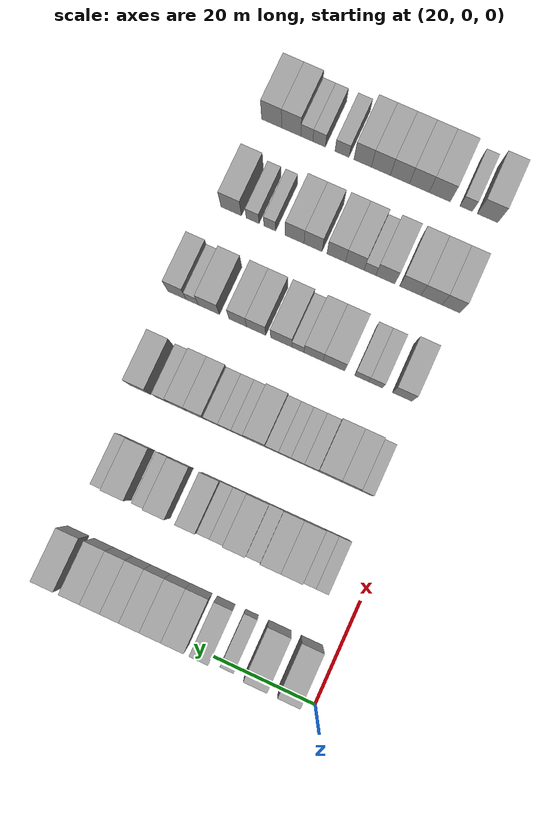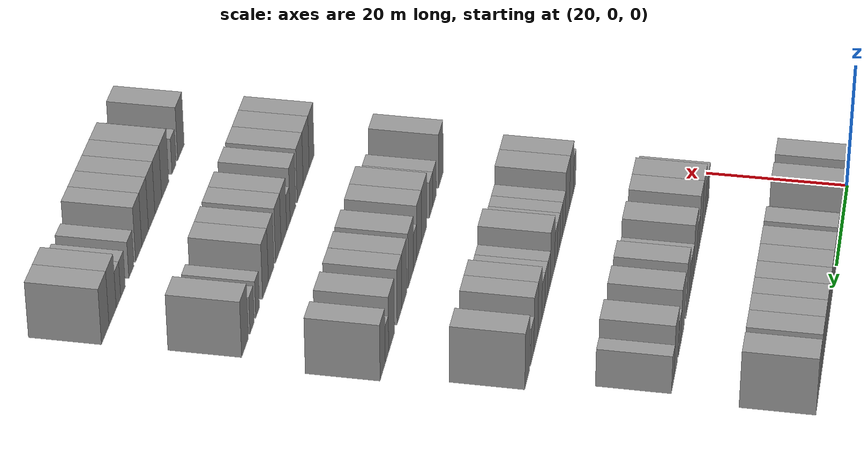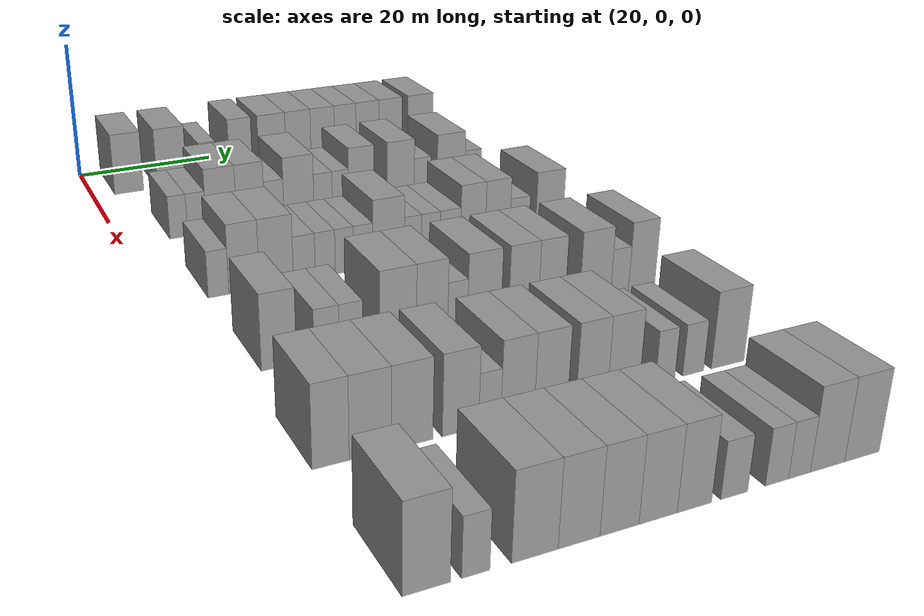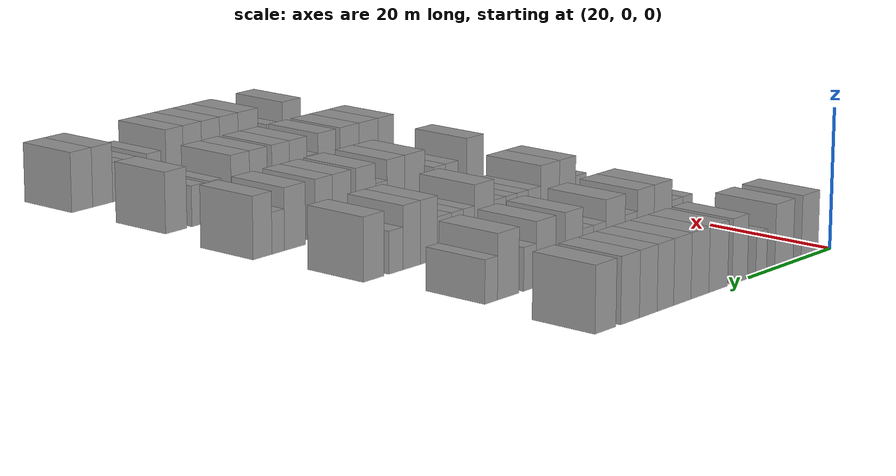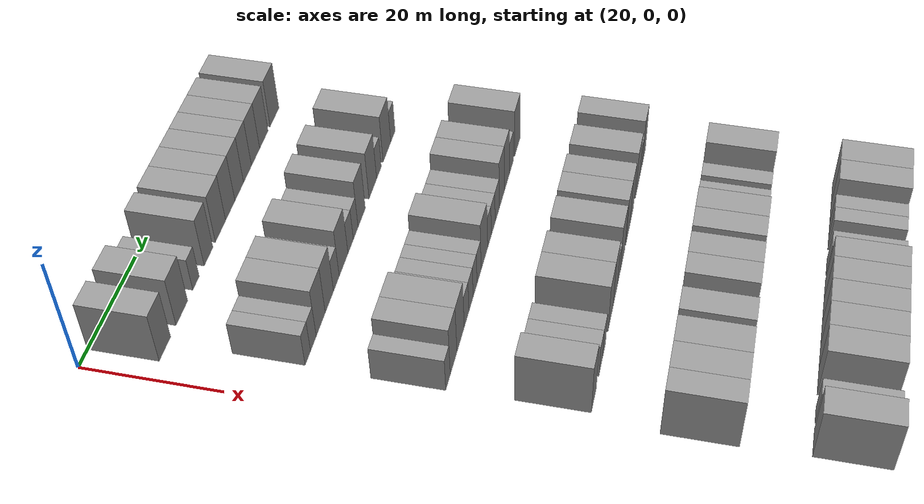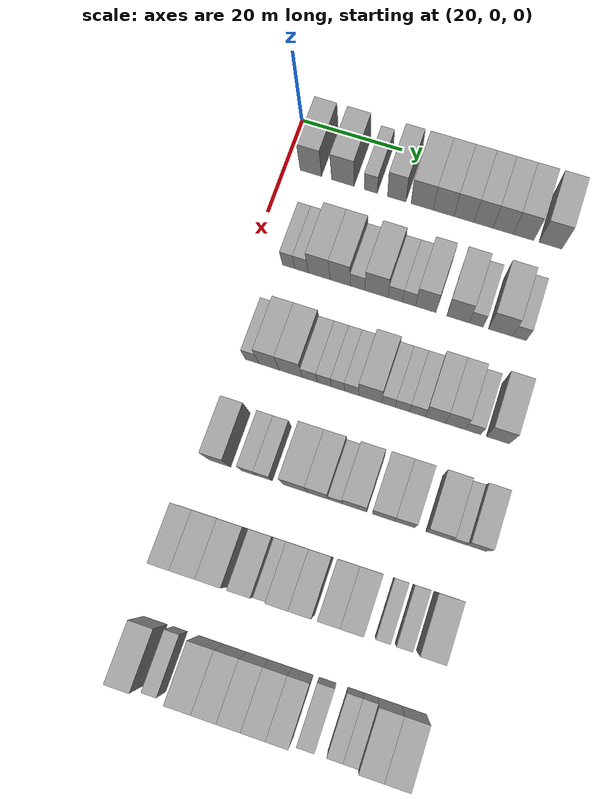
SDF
<sdf version="1.6">
 <world name="default">
  <model name="building_89">
   <static>1</static>
   <pose>25.0000 5.1682 0 0.000000 0.000000 0.000000</pose>
   <link name="link">
    <pose>0 0 4.50 0 0 0</pose>
    <collision name="collision"><geometry><box><size>10.0000 4.2393 9.0000</size></box></geometry></collision>
    <visual name="visual">
     <cast_shadows>0</cast_shadows>
     <geometry><box><size>10.0000 4.2393 9.0000</size></box></geometry>
     <material>
      <script>
       <uri>model://grey_wall/materials/scripts</uri>
       <uri>model://grey_wall/materials/textures</uri>
       <name>vrc/grey_wall</name>
      </script>
     </material>
    </visual>
   </link>
  </model>
  <model name="building_90">
   <static>1</static>
   <pose>25.0000 11.5206 0 0.000000 0.000000 0.000000</pose>
   <link name="link">
    <pose>0 0 4.50 0 0 0</pose>
    <collision name="collision"><geometry><box><size>10.0000 4.4654 9.0000</size></box></geometry></collision>
    <visual name="visual">
     <cast_shadows>0</cast_shadows>
     <geometry><box><size>10.0000 4.4654 9.0000</size></box></geometry>
     <material>
      <script>
       <uri>model://grey_wall/materials/scripts</uri>
       <uri>model://grey_wall/materials/textures</uri>
       <name>vrc/grey_wall</name>
      </script>
     </material>
    </visual>
   </link>
  </model>
  <model name="building_91">
   <static>1</static>
   <pose>25.0000 17.0446 0 0.000000 0.000000 0.000000</pose>
   <link name="link">
    <pose>0 0 3.00 0 0 0</pose>
    <collision name="collision"><geometry><box><size>10.0000 2.5824 6.0000</size></box></geometry></collision>
    <visual name="visual">
     <cast_shadows>0</cast_shadows>
     <geometry><box><size>10.0000 2.5824 6.0000</size></box></geometry>
     <material>
      <script>
       <uri>model://grey_wall/materials/scripts</uri>
       <uri>model://grey_wall/materials/textures</uri>
       <name>vrc/grey_wall</name>
      </script>
     </material>
    </visual>
   </link>
  </model>
  <model name="building_92">
   <static>1</static>
   <pose>25.0000 22.1387 0 0.000000 0.000000 0.000000</pose>
   <link name="link">
    <pose>0 0 4.50 0 0 0</pose>
    <collision name="collision"><geometry><box><size>10.0000 3.6059 9.0000</size></box></geometry></collision>
    <visual name="visual">
     <cast_shadows>0</cast_shadows>
     <geometry><box><size>10.0000 3.6059 9.0000</size></box></geometry>
     <material>
      <script>
       <uri>model://grey_wall/materials/scripts</uri>
       <uri>model://grey_wall/materials/textures</uri>
       <name>vrc/grey_wall</name>
      </script>
     </material>
    </visual>
   </link>
  </model>
  <model name="building_93">
   <static>1</static>
   <pose>25.0000 27.1247 0 0.000000 0.000000 0.000000</pose>
   <link name="link">
    <pose>0 0 4.50 0 0 0</pose>
    <collision name="collision"><geometry><box><size>10.0000 4.3662 9.0000</size></box></geometry></collision>
    <visual name="visual">
     <cast_shadows>0</cast_shadows>
     <geometry><box><size>10.0000 4.3662 9.0000</size></box></geometry>
     <material>
      <script>
       <uri>model://grey_wall/materials/scripts</uri>
       <uri>model://grey_wall/materials/textures</uri>
       <name>vrc/grey_wall</name>
      </script>
     </material>
    </visual>
   </link>
  </model>
  <model name="building_94">
   <static>1</static>
   <pose>25.0000 31.3392 0 0.000000 0.000000 0.000000</pose>
   <link name="link">
    <pose>0 0 4.50 0 0 0</pose>
    <collision name="collision"><geometry><box><size>10.0000 4.0628 9.0000</size></box></geometry></collision>
    <visual name="visual">
     <cast_shadows>0</cast_shadows>
     <geometry><box><size>10.0000 4.0628 9.0000</size></box></geometry>
     <material>
      <script>
       <uri>model://grey_wall/materials/scripts</uri>
       <uri>model://grey_wall/materials/textures</uri>
       <name>vrc/grey_wall</name>
      </script>
     </material>
    </visual>
   </link>
  </model>
  <model name="building_95">
   <static>1</static>
   <pose>25.0000 35.3141 0 0.000000 0.000000 0.000000</pose>
   <link name="link">
    <pose>0 0 4.50 0 0 0</pose>
    <collision name="collision"><geometry><box><size>10.0000 3.8870 9.0000</size></box></geometry></collision>
    <visual name="visual">
     <cast_shadows>0</cast_shadows>
     <geometry><box><size>10.0000 3.8870 9.0000</size></box></geometry>
     <material>
      <script>
       <uri>model://grey_wall/materials/scripts</uri>
       <uri>model://grey_wall/materials/textures</uri>
       <name>vrc/grey_wall</name>
      </script>
     </material>
    </visual>
   </link>
  </model>
  <model name="building_96">
   <static>1</static>
   <pose>25.0000 39.0773 0 0.000000 0.000000 0.000000</pose>
   <link name="link">
    <pose>0 0 4.50 0 0 0</pose>
    <collision name="collision"><geometry><box><size>10.0000 3.6394 9.0000</size></box></geometry></collision>
    <visual name="visual">
     <cast_shadows>0</cast_shadows>
     <geometry><box><size>10.0000 3.6394 9.0000</size></box></geometry>
     <material>
      <script>
       <uri>model://grey_wall/materials/scripts</uri>
       <uri>model://grey_wall/materials/textures</uri>
       <name>vrc/grey_wall</name>
      </script>
     </material>
    </visual>
   </link>
  </model>
  <model name="building_97">
   <static>1</static>
   <pose>25.0000 42.8184 0 0.000000 0.000000 0.000000</pose>
   <link name="link">
    <pose>0 0 4.50 0 0 0</pose>
    <collision name="collision"><geometry><box><size>10.0000 3.8427 9.0000</size></box></geometry></collision>
    <visual name="visual">
     <cast_shadows>0</cast_shadows>
     <geometry><box><size>10.0000 3.8427 9.0000</size></box></geometry>
     <material>
      <script>
       <uri>model://grey_wall/materials/scripts</uri>
       <uri>model://grey_wall/materials/textures</uri>
       <name>vrc/grey_wall</name>
      </script>
     </material>
    </visual>
   </link>
  </model>
  <model name="building_98">
   <static>1</static>
   <pose>25.0000 46.7473 0 0.000000 0.000000 0.000000</pose>
   <link name="link">
    <pose>0 0 4.50 0 0 0</pose>
    <collision name="collision"><geometry><box><size>10.0000 4.0151 9.0000</size></box></geometry></collision>
    <visual name="visual">
     <cast_shadows>0</cast_shadows>
     <geometry><box><size>10.0000 4.0151 9.0000</size></box></geometry>
     <material>
      <script>
       <uri>model://grey_wall/materials/scripts</uri>
       <uri>model://grey_wall/materials/textures</uri>
       <name>vrc/grey_wall</name>
      </script>
     </material>
    </visual>
   </link>
  </model>
  <model name="building_99">
   <static>1</static>
   <pose>25.0000 51.9541 0 0.000000 0.000000 0.000000</pose>
   <link name="link">
    <pose>0 0 4.50 0 0 0</pose>
    <collision name="collision"><geometry><box><size>10.0000 4.3986 9.0000</size></box></geometry></collision>
    <visual name="visual">
     <cast_shadows>0</cast_shadows>
     <geometry><box><size>10.0000 4.3986 9.0000</size></box></geometry>
     <material>
      <script>
       <uri>model://grey_wall/materials/scripts</uri>
       <uri>model://grey_wall/materials/textures</uri>
       <name>vrc/grey_wall</name>
      </script>
     </material>
    </visual>
   </link>
  </model>
  <model name="building_249">
   <static>1</static>
   <pose>44.0000 7.4224 0 0.000000 0.000000 0.000000</pose>
   <link name="link">
    <pose>0 0 3.00 0 0 0</pose>
    <collision name="collision"><geometry><box><size>10.0000 2.4148 6.0000</size></box></geometry></collision>
    <visual name="visual">
     <cast_shadows>0</cast_shadows>
     <geometry><box><size>10.0000 2.4148 6.0000</size></box></geometry>
     <material>
      <script>
       <uri>model://grey_wall/materials/scripts</uri>
       <uri>model://grey_wall/materials/textures</uri>
       <name>vrc/grey_wall</name>
      </script>
     </material>
    </visual>
   </link>
  </model>
  <model name="building_250">
   <static>1</static>
   <pose>44.0000 9.9266 0 0.000000 0.000000 0.000000</pose>
   <link name="link">
    <pose>0 0 3.00 0 0 0</pose>
    <collision name="collision"><geometry><box><size>10.0000 2.5937 6.0000</size></box></geometry></collision>
    <visual name="visual">
     <cast_shadows>0</cast_shadows>
     <geometry><box><size>10.0000 2.5937 6.0000</size></box></geometry>
     <material>
      <script>
       <uri>model://grey_wall/materials/scripts</uri>
       <uri>model://grey_wall/materials/textures</uri>
       <name>vrc/grey_wall</name>
      </script>
     </material>
    </visual>
   </link>
  </model>
  <model name="building_251">
   <static>1</static>
   <pose>44.0000 13.3221 0 0.000000 0.000000 0.000000</pose>
   <link name="link">
    <pose>0 0 4.50 0 0 0</pose>
    <collision name="collision"><geometry><box><size>10.0000 4.1971 9.0000</size></box></geometry></collision>
    <visual name="visual">
     <cast_shadows>0</cast_shadows>
     <geometry><box><size>10.0000 4.1971 9.0000</size></box></geometry>
     <material>
      <script>
       <uri>model://grey_wall/materials/scripts</uri>
       <uri>model://grey_wall/materials/textures</uri>
       <name>vrc/grey_wall</name>
      </script>
     </material>
    </visual>
   </link>
  </model>
  <model name="building_252">
   <static>1</static>
   <pose>44.0000 17.3969 0 0.000000 0.000000 0.000000</pose>
   <link name="link">
    <pose>0 0 4.50 0 0 0</pose>
    <collision name="collision"><geometry><box><size>10.0000 3.9526 9.0000</size></box></geometry></collision>
    <visual name="visual">
     <cast_shadows>0</cast_shadows>
     <geometry><box><size>10.0000 3.9526 9.0000</size></box></geometry>
     <material>
      <script>
       <uri>model://grey_wall/materials/scripts</uri>
       <uri>model://grey_wall/materials/textures</uri>
       <name>vrc/grey_wall</name>
      </script>
     </material>
    </visual>
   </link>
  </model>
  <model name="building_253">
   <static>1</static>
   <pose>44.0000 20.7766 0 0.000000 0.000000 0.000000</pose>
   <link name="link">
    <pose>0 0 3.00 0 0 0</pose>
    <collision name="collision"><geometry><box><size>10.0000 2.8067 6.0000</size></box></geometry></collision>
    <visual name="visual">
     <cast_shadows>0</cast_shadows>
     <geometry><box><size>10.0000 2.8067 6.0000</size></box></geometry>
     <material>
      <script>
       <uri>model://grey_wall/materials/scripts</uri>
       <uri>model://grey_wall/materials/textures</uri>
       <name>vrc/grey_wall</name>
      </script>
     </material>
    </visual>
   </link>
  </model>
  <model name="building_254">
   <static>1</static>
   <pose>44.0000 24.3765 0 0.000000 0.000000 0.000000</pose>
   <link name="link">
    <pose>0 0 4.50 0 0 0</pose>
    <collision name="collision"><geometry><box><size>10.0000 4.3931 9.0000</size></box></geometry></collision>
    <visual name="visual">
     <cast_shadows>0</cast_shadows>
     <geometry><box><size>10.0000 4.3931 9.0000</size></box></geometry>
     <material>
      <script>
       <uri>model://grey_wall/materials/scripts</uri>
       <uri>model://grey_wall/materials/textures</uri>
       <name>vrc/grey_wall</name>
      </script>
     </material>
    </visual>
   </link>
  </model>
  <model name="building_255">
   <static>1</static>
   <pose>44.0000 27.9406 0 0.000000 0.000000 0.000000</pose>
   <link name="link">
    <pose>0 0 3.00 0 0 0</pose>
    <collision name="collision"><geometry><box><size>10.0000 2.7352 6.0000</size></box></geometry></collision>
    <visual name="visual">
     <cast_shadows>0</cast_shadows>
     <geometry><box><size>10.0000 2.7352 6.0000</size></box></geometry>
     <material>
      <script>
       <uri>model://grey_wall/materials/scripts</uri>
       <uri>model://grey_wall/materials/textures</uri>
       <name>vrc/grey_wall</name>
      </script>
     </material>
    </visual>
   </link>
  </model>
  <model name="building_256">
   <static>1</static>
   <pose>44.0000 30.5505 0 0.000000 0.000000 0.000000</pose>
   <link name="link">
    <pose>0 0 3.00 0 0 0</pose>
    <collision name="collision"><geometry><box><size>10.0000 2.4846 6.0000</size></box></geometry></collision>
    <visual name="visual">
     <cast_shadows>0</cast_shadows>
     <geometry><box><size>10.0000 2.4846 6.0000</size></box></geometry>
     <material>
      <script>
       <uri>model://grey_wall/materials/scripts</uri>
       <uri>model://grey_wall/materials/textures</uri>
       <name>vrc/grey_wall</name>
      </script>
     </material>
    </visual>
   </link>
  </model>
  <model name="building_257">
   <static>1</static>
   <pose>44.0000 33.7328 0 0.000000 0.000000 0.000000</pose>
   <link name="link">
    <pose>0 0 4.50 0 0 0</pose>
    <collision name="collision"><geometry><box><size>10.0000 3.8801 9.0000</size></box></geometry></collision>
    <visual name="visual">
     <cast_shadows>0</cast_shadows>
     <geometry><box><size>10.0000 3.8801 9.0000</size></box></geometry>
     <material>
      <script>
       <uri>model://grey_wall/materials/scripts</uri>
       <uri>model://grey_wall/materials/textures</uri>
       <name>vrc/grey_wall</name>
      </script>
     </material>
    </visual>
   </link>
  </model>
  <model name="building_258">
   <static>1</static>
   <pose>44.0000 39.7810 0 0.000000 0.000000 0.000000</pose>
   <link name="link">
    <pose>0 0 4.50 0 0 0</pose>
    <collision name="collision"><geometry><box><size>10.0000 4.2163 9.0000</size></box></geometry></collision>
    <visual name="visual">
     <cast_shadows>0</cast_shadows>
     <geometry><box><size>10.0000 4.2163 9.0000</size></box></geometry>
     <material>
      <script>
       <uri>model://grey_wall/materials/scripts</uri>
       <uri>model://grey_wall/materials/textures</uri>
       <name>vrc/grey_wall</name>
      </script>
     </material>
    </visual>
   </link>
  </model>
  <model name="building_259">
   <static>1</static>
   <pose>44.0000 43.2154 0 0.000000 0.000000 0.000000</pose>
   <link name="link">
    <pose>0 0 3.00 0 0 0</pose>
    <collision name="collision"><geometry><box><size>10.0000 2.6526 6.0000</size></box></geometry></collision>
    <visual name="visual">
     <cast_shadows>0</cast_shadows>
     <geometry><box><size>10.0000 2.6526 6.0000</size></box></geometry>
     <material>
      <script>
       <uri>model://grey_wall/materials/scripts</uri>
       <uri>model://grey_wall/materials/textures</uri>
       <name>vrc/grey_wall</name>
      </script>
     </material>
    </visual>
   </link>
  </model>
  <model name="building_260">
   <static>1</static>
   <pose>44.0000 47.7839 0 0.000000 0.000000 0.000000</pose>
   <link name="link">
    <pose>0 0 4.50 0 0 0</pose>
    <collision name="collision"><geometry><box><size>10.0000 4.4843 9.0000</size></box></geometry></collision>
    <visual name="visual">
     <cast_shadows>0</cast_shadows>
     <geometry><box><size>10.0000 4.4843 9.0000</size></box></geometry>
     <material>
      <script>
       <uri>model://grey_wall/materials/scripts</uri>
       <uri>model://grey_wall/materials/textures</uri>
       <name>vrc/grey_wall</name>
      </script>
     </material>
    </visual>
   </link>
  </model>
  <model name="building_261">
   <static>1</static>
   <pose>44.0000 51.3295 0 0.000000 0.000000 0.000000</pose>
   <link name="link">
    <pose>0 0 3.00 0 0 0</pose>
    <collision name="collision"><geometry><box><size>10.0000 2.6069 6.0000</size></box></geometry></collision>
    <visual name="visual">
     <cast_shadows>0</cast_shadows>
     <geometry><box><size>10.0000 2.6069 6.0000</size></box></geometry>
     <material>
      <script>
       <uri>model://grey_wall/materials/scripts</uri>
       <uri>model://grey_wall/materials/textures</uri>
       <name>vrc/grey_wall</name>
      </script>
     </material>
    </visual>
   </link>
  </model>
  <model name="building_432">
   <static>1</static>
   <pose>63.0000 7.1593 0 0.000000 0.000000 0.000000</pose>
   <link name="link">
    <pose>0 0 3.00 0 0 0</pose>
    <collision name="collision"><geometry><box><size>10.0000 2.5609 6.0000</size></box></geometry></collision>
    <visual name="visual">
     <cast_shadows>0</cast_shadows>
     <geometry><box><size>10.0000 2.5609 6.0000</size></box></geometry>
     <material>
      <script>
       <uri>model://grey_wall/materials/scripts</uri>
       <uri>model://grey_wall/materials/textures</uri>
       <name>vrc/grey_wall</name>
      </script>
     </material>
    </visual>
   </link>
  </model>
  <model name="building_433">
   <static>1</static>
   <pose>63.0000 10.3559 0 0.000000 0.000000 0.000000</pose>
   <link name="link">
    <pose>0 0 4.50 0 0 0</pose>
    <collision name="collision"><geometry><box><size>10.0000 3.8323 9.0000</size></box></geometry></collision>
    <visual name="visual">
     <cast_shadows>0</cast_shadows>
     <geometry><box><size>10.0000 3.8323 9.0000</size></box></geometry>
     <material>
      <script>
       <uri>model://grey_wall/materials/scripts</uri>
       <uri>model://grey_wall/materials/textures</uri>
       <name>vrc/grey_wall</name>
      </script>
     </material>
    </visual>
   </link>
  </model>
  <model name="building_434">
   <static>1</static>
   <pose>63.0000 14.4499 0 0.000000 0.000000 0.000000</pose>
   <link name="link">
    <pose>0 0 4.50 0 0 0</pose>
    <collision name="collision"><geometry><box><size>10.0000 4.3558 9.0000</size></box></geometry></collision>
    <visual name="visual">
     <cast_shadows>0</cast_shadows>
     <geometry><box><size>10.0000 4.3558 9.0000</size></box></geometry>
     <material>
      <script>
       <uri>model://grey_wall/materials/scripts</uri>
       <uri>model://grey_wall/materials/textures</uri>
       <name>vrc/grey_wall</name>
      </script>
     </material>
    </visual>
   </link>
  </model>
  <model name="building_435">
   <static>1</static>
   <pose>63.0000 18.0477 0 0.000000 0.000000 0.000000</pose>
   <link name="link">
    <pose>0 0 3.00 0 0 0</pose>
    <collision name="collision"><geometry><box><size>10.0000 2.8398 6.0000</size></box></geometry></collision>
    <visual name="visual">
     <cast_shadows>0</cast_shadows>
     <geometry><box><size>10.0000 2.8398 6.0000</size></box></geometry>
     <material>
      <script>
       <uri>model://grey_wall/materials/scripts</uri>
       <uri>model://grey_wall/materials/textures</uri>
       <name>vrc/grey_wall</name>
      </script>
     </material>
    </visual>
   </link>
  </model>
  <model name="building_436">
   <static>1</static>
   <pose>63.0000 20.7925 0 0.000000 0.000000 0.000000</pose>
   <link name="link">
    <pose>0 0 3.00 0 0 0</pose>
    <collision name="collision"><geometry><box><size>10.0000 2.6497 6.0000</size></box></geometry></collision>
    <visual name="visual">
     <cast_shadows>0</cast_shadows>
     <geometry><box><size>10.0000 2.6497 6.0000</size></box></geometry>
     <material>
      <script>
       <uri>model://grey_wall/materials/scripts</uri>
       <uri>model://grey_wall/materials/textures</uri>
       <name>vrc/grey_wall</name>
      </script>
     </material>
    </visual>
   </link>
  </model>
  <model name="building_437">
   <static>1</static>
   <pose>63.0000 23.3493 0 0.000000 0.000000 0.000000</pose>
   <link name="link">
    <pose>0 0 3.00 0 0 0</pose>
    <collision name="collision"><geometry><box><size>10.0000 2.4640 6.0000</size></box></geometry></collision>
    <visual name="visual">
     <cast_shadows>0</cast_shadows>
     <geometry><box><size>10.0000 2.4640 6.0000</size></box></geometry>
     <material>
      <script>
       <uri>model://grey_wall/materials/scripts</uri>
       <uri>model://grey_wall/materials/textures</uri>
       <name>vrc/grey_wall</name>
      </script>
     </material>
    </visual>
   </link>
  </model>
  <model name="building_438">
   <static>1</static>
   <pose>63.0000 25.8976 0 0.000000 0.000000 0.000000</pose>
   <link name="link">
    <pose>0 0 3.00 0 0 0</pose>
    <collision name="collision"><geometry><box><size>10.0000 2.6326 6.0000</size></box></geometry></collision>
    <visual name="visual">
     <cast_shadows>0</cast_shadows>
     <geometry><box><size>10.0000 2.6326 6.0000</size></box></geometry>
     <material>
      <script>
       <uri>model://grey_wall/materials/scripts</uri>
       <uri>model://grey_wall/materials/textures</uri>
       <name>vrc/grey_wall</name>
      </script>
     </material>
    </visual>
   </link>
  </model>
  <model name="building_439">
   <static>1</static>
   <pose>63.0000 29.3674 0 0.000000 0.000000 0.000000</pose>
   <link name="link">
    <pose>0 0 4.50 0 0 0</pose>
    <collision name="collision"><geometry><box><size>10.0000 4.3069 9.0000</size></box></geometry></collision>
    <visual name="visual">
     <cast_shadows>0</cast_shadows>
     <geometry><box><size>10.0000 4.3069 9.0000</size></box></geometry>
     <material>
      <script>
       <uri>model://grey_wall/materials/scripts</uri>
       <uri>model://grey_wall/materials/textures</uri>
       <name>vrc/grey_wall</name>
      </script>
     </material>
    </visual>
   </link>
  </model>
  <model name="building_440">
   <static>1</static>
   <pose>63.0000 32.7330 0 0.000000 0.000000 0.000000</pose>
   <link name="link">
    <pose>0 0 3.00 0 0 0</pose>
    <collision name="collision"><geometry><box><size>10.0000 2.4243 6.0000</size></box></geometry></collision>
    <visual name="visual">
     <cast_shadows>0</cast_shadows>
     <geometry><box><size>10.0000 2.4243 6.0000</size></box></geometry>
     <material>
      <script>
       <uri>model://grey_wall/materials/scripts</uri>
       <uri>model://grey_wall/materials/textures</uri>
       <name>vrc/grey_wall</name>
      </script>
     </material>
    </visual>
   </link>
  </model>
  <model name="building_441">
   <static>1</static>
   <pose>63.0000 35.2612 0 0.000000 0.000000 0.000000</pose>
   <link name="link">
    <pose>0 0 3.00 0 0 0</pose>
    <collision name="collision"><geometry><box><size>10.0000 2.6322 6.0000</size></box></geometry></collision>
    <visual name="visual">
     <cast_shadows>0</cast_shadows>
     <geometry><box><size>10.0000 2.6322 6.0000</size></box></geometry>
     <material>
      <script>
       <uri>model://grey_wall/materials/scripts</uri>
       <uri>model://grey_wall/materials/textures</uri>
       <name>vrc/grey_wall</name>
      </script>
     </material>
    </visual>
   </link>
  </model>
  <model name="building_442">
   <static>1</static>
   <pose>63.0000 38.0422 0 0.000000 0.000000 0.000000</pose>
   <link name="link">
    <pose>0 0 3.00 0 0 0</pose>
    <collision name="collision"><geometry><box><size>10.0000 2.9298 6.0000</size></box></geometry></collision>
    <visual name="visual">
     <cast_shadows>0</cast_shadows>
     <geometry><box><size>10.0000 2.9298 6.0000</size></box></geometry>
     <material>
      <script>
       <uri>model://grey_wall/materials/scripts</uri>
       <uri>model://grey_wall/materials/textures</uri>
       <name>vrc/grey_wall</name>
      </script>
     </material>
    </visual>
   </link>
  </model>
  <model name="building_443">
   <static>1</static>
   <pose>63.0000 41.3149 0 0.000000 0.000000 0.000000</pose>
   <link name="link">
    <pose>0 0 4.50 0 0 0</pose>
    <collision name="collision"><geometry><box><size>10.0000 3.6156 9.0000</size></box></geometry></collision>
    <visual name="visual">
     <cast_shadows>0</cast_shadows>
     <geometry><box><size>10.0000 3.6156 9.0000</size></box></geometry>
     <material>
      <script>
       <uri>model://grey_wall/materials/scripts</uri>
       <uri>model://grey_wall/materials/textures</uri>
       <name>vrc/grey_wall</name>
      </script>
     </material>
    </visual>
   </link>
  </model>
  <model name="building_444">
   <static>1</static>
   <pose>63.0000 44.9523 0 0.000000 0.000000 0.000000</pose>
   <link name="link">
    <pose>0 0 4.50 0 0 0</pose>
    <collision name="collision"><geometry><box><size>10.0000 3.6591 9.0000</size></box></geometry></collision>
    <visual name="visual">
     <cast_shadows>0</cast_shadows>
     <geometry><box><size>10.0000 3.6591 9.0000</size></box></geometry>
     <material>
      <script>
       <uri>model://grey_wall/materials/scripts</uri>
       <uri>model://grey_wall/materials/textures</uri>
       <name>vrc/grey_wall</name>
      </script>
     </material>
    </visual>
   </link>
  </model>
  <model name="building_445">
   <static>1</static>
   <pose>63.0000 48.2326 0 0.000000 0.000000 0.000000</pose>
   <link name="link">
    <pose>0 0 3.00 0 0 0</pose>
    <collision name="collision"><geometry><box><size>10.0000 2.9016 6.0000</size></box></geometry></collision>
    <visual name="visual">
     <cast_shadows>0</cast_shadows>
     <geometry><box><size>10.0000 2.9016 6.0000</size></box></geometry>
     <material>
      <script>
       <uri>model://grey_wall/materials/scripts</uri>
       <uri>model://grey_wall/materials/textures</uri>
       <name>vrc/grey_wall</name>
      </script>
     </material>
    </visual>
   </link>
  </model>
  <model name="building_446">
   <static>1</static>
   <pose>63.0000 52.7912 0 0.000000 0.000000 0.000000</pose>
   <link name="link">
    <pose>0 0 4.50 0 0 0</pose>
    <collision name="collision"><geometry><box><size>10.0000 4.2156 9.0000</size></box></geometry></collision>
    <visual name="visual">
     <cast_shadows>0</cast_shadows>
     <geometry><box><size>10.0000 4.2156 9.0000</size></box></geometry>
     <material>
      <script>
       <uri>model://grey_wall/materials/scripts</uri>
       <uri>model://grey_wall/materials/textures</uri>
       <name>vrc/grey_wall</name>
      </script>
     </material>
    </visual>
   </link>
  </model>
  <model name="building_612">
   <static>1</static>
   <pose>82.0000 8.0890 0 0.000000 0.000000 0.000000</pose>
   <link name="link">
    <pose>0 0 4.50 0 0 0</pose>
    <collision name="collision"><geometry><box><size>10.0000 3.9566 9.0000</size></box></geometry></collision>
    <visual name="visual">
     <cast_shadows>0</cast_shadows>
     <geometry><box><size>10.0000 3.9566 9.0000</size></box></geometry>
     <material>
      <script>
       <uri>model://grey_wall/materials/scripts</uri>
       <uri>model://grey_wall/materials/textures</uri>
       <name>vrc/grey_wall</name>
      </script>
     </material>
    </visual>
   </link>
  </model>
  <model name="building_613">
   <static>1</static>
   <pose>82.0000 13.5123 0 0.000000 0.000000 0.000000</pose>
   <link name="link">
    <pose>0 0 3.00 0 0 0</pose>
    <collision name="collision"><geometry><box><size>10.0000 2.8900 6.0000</size></box></geometry></collision>
    <visual name="visual">
     <cast_shadows>0</cast_shadows>
     <geometry><box><size>10.0000 2.8900 6.0000</size></box></geometry>
     <material>
      <script>
       <uri>model://grey_wall/materials/scripts</uri>
       <uri>model://grey_wall/materials/textures</uri>
       <name>vrc/grey_wall</name>
      </script>
     </material>
    </visual>
   </link>
  </model>
  <model name="building_614">
   <static>1</static>
   <pose>82.0000 16.3535 0 0.000000 0.000000 0.000000</pose>
   <link name="link">
    <pose>0 0 3.00 0 0 0</pose>
    <collision name="collision"><geometry><box><size>10.0000 2.7924 6.0000</size></box></geometry></collision>
    <visual name="visual">
     <cast_shadows>0</cast_shadows>
     <geometry><box><size>10.0000 2.7924 6.0000</size></box></geometry>
     <material>
      <script>
       <uri>model://grey_wall/materials/scripts</uri>
       <uri>model://grey_wall/materials/textures</uri>
       <name>vrc/grey_wall</name>
      </script>
     </material>
    </visual>
   </link>
  </model>
  <model name="building_615">
   <static>1</static>
   <pose>82.0000 21.9774 0 0.000000 0.000000 0.000000</pose>
   <link name="link">
    <pose>0 0 4.50 0 0 0</pose>
    <collision name="collision"><geometry><box><size>10.0000 4.4553 9.0000</size></box></geometry></collision>
    <visual name="visual">
     <cast_shadows>0</cast_shadows>
     <geometry><box><size>10.0000 4.4553 9.0000</size></box></geometry>
     <material>
      <script>
       <uri>model://grey_wall/materials/scripts</uri>
       <uri>model://grey_wall/materials/textures</uri>
       <name>vrc/grey_wall</name>
      </script>
     </material>
    </visual>
   </link>
  </model>
  <model name="building_616">
   <static>1</static>
   <pose>82.0000 26.1522 0 0.000000 0.000000 0.000000</pose>
   <link name="link">
    <pose>0 0 4.50 0 0 0</pose>
    <collision name="collision"><geometry><box><size>10.0000 3.8942 9.0000</size></box></geometry></collision>
    <visual name="visual">
     <cast_shadows>0</cast_shadows>
     <geometry><box><size>10.0000 3.8942 9.0000</size></box></geometry>
     <material>
      <script>
       <uri>model://grey_wall/materials/scripts</uri>
       <uri>model://grey_wall/materials/textures</uri>
       <name>vrc/grey_wall</name>
      </script>
     </material>
    </visual>
   </link>
  </model>
  <model name="building_617">
   <static>1</static>
   <pose>82.0000 29.3459 0 0.000000 0.000000 0.000000</pose>
   <link name="link">
    <pose>0 0 3.00 0 0 0</pose>
    <collision name="collision"><geometry><box><size>10.0000 2.4934 6.0000</size></box></geometry></collision>
    <visual name="visual">
     <cast_shadows>0</cast_shadows>
     <geometry><box><size>10.0000 2.4934 6.0000</size></box></geometry>
     <material>
      <script>
       <uri>model://grey_wall/materials/scripts</uri>
       <uri>model://grey_wall/materials/textures</uri>
       <name>vrc/grey_wall</name>
      </script>
     </material>
    </visual>
   </link>
  </model>
  <model name="building_618">
   <static>1</static>
   <pose>82.0000 32.7515 0 0.000000 0.000000 0.000000</pose>
   <link name="link">
    <pose>0 0 4.50 0 0 0</pose>
    <collision name="collision"><geometry><box><size>10.0000 4.3178 9.0000</size></box></geometry></collision>
    <visual name="visual">
     <cast_shadows>0</cast_shadows>
     <geometry><box><size>10.0000 4.3178 9.0000</size></box></geometry>
     <material>
      <script>
       <uri>model://grey_wall/materials/scripts</uri>
       <uri>model://grey_wall/materials/textures</uri>
       <name>vrc/grey_wall</name>
      </script>
     </material>
    </visual>
   </link>
  </model>
  <model name="building_619">
   <static>1</static>
   <pose>82.0000 37.8709 0 0.000000 0.000000 0.000000</pose>
   <link name="link">
    <pose>0 0 4.50 0 0 0</pose>
    <collision name="collision"><geometry><box><size>10.0000 3.9211 9.0000</size></box></geometry></collision>
    <visual name="visual">
     <cast_shadows>0</cast_shadows>
     <geometry><box><size>10.0000 3.9211 9.0000</size></box></geometry>
     <material>
      <script>
       <uri>model://grey_wall/materials/scripts</uri>
       <uri>model://grey_wall/materials/textures</uri>
       <name>vrc/grey_wall</name>
      </script>
     </material>
    </visual>
   </link>
  </model>
  <model name="building_620">
   <static>1</static>
   <pose>82.0000 41.6474 0 0.000000 0.000000 0.000000</pose>
   <link name="link">
    <pose>0 0 4.50 0 0 0</pose>
    <collision name="collision"><geometry><box><size>10.0000 3.6318 9.0000</size></box></geometry></collision>
    <visual name="visual">
     <cast_shadows>0</cast_shadows>
     <geometry><box><size>10.0000 3.6318 9.0000</size></box></geometry>
     <material>
      <script>
       <uri>model://grey_wall/materials/scripts</uri>
       <uri>model://grey_wall/materials/textures</uri>
       <name>vrc/grey_wall</name>
      </script>
     </material>
    </visual>
   </link>
  </model>
  <model name="building_621">
   <static>1</static>
   <pose>82.0000 47.6344 0 0.000000 0.000000 0.000000</pose>
   <link name="link">
    <pose>0 0 4.50 0 0 0</pose>
    <collision name="collision"><geometry><box><size>10.0000 4.3422 9.0000</size></box></geometry></collision>
    <visual name="visual">
     <cast_shadows>0</cast_shadows>
     <geometry><box><size>10.0000 4.3422 9.0000</size></box></geometry>
     <material>
      <script>
       <uri>model://grey_wall/materials/scripts</uri>
       <uri>model://grey_wall/materials/textures</uri>
       <name>vrc/grey_wall</name>
      </script>
     </material>
    </visual>
   </link>
  </model>
  <model name="building_622">
   <static>1</static>
   <pose>82.0000 51.0781 0 0.000000 0.000000 0.000000</pose>
   <link name="link">
    <pose>0 0 3.00 0 0 0</pose>
    <collision name="collision"><geometry><box><size>10.0000 2.5452 6.0000</size></box></geometry></collision>
    <visual name="visual">
     <cast_shadows>0</cast_shadows>
     <geometry><box><size>10.0000 2.5452 6.0000</size></box></geometry>
     <material>
      <script>
       <uri>model://grey_wall/materials/scripts</uri>
       <uri>model://grey_wall/materials/textures</uri>
       <name>vrc/grey_wall</name>
      </script>
     </material>
    </visual>
   </link>
  </model>
  <model name="building_623">
   <static>1</static>
   <pose>82.0000 54.2477 0 0.000000 0.000000 0.000000</pose>
   <link name="link">
    <pose>0 0 4.50 0 0 0</pose>
    <collision name="collision"><geometry><box><size>10.0000 3.7941 9.0000</size></box></geometry></collision>
    <visual name="visual">
     <cast_shadows>0</cast_shadows>
     <geometry><box><size>10.0000 3.7941 9.0000</size></box></geometry>
     <material>
      <script>
       <uri>model://grey_wall/materials/scripts</uri>
       <uri>model://grey_wall/materials/textures</uri>
       <name>vrc/grey_wall</name>
      </script>
     </material>
    </visual>
   </link>
  </model>
  <model name="building_785">
   <static>1</static>
   <pose>101.0000 6.4285 0 0.000000 0.000000 0.000000</pose>
   <link name="link">
    <pose>0 0 4.50 0 0 0</pose>
    <collision name="collision"><geometry><box><size>10.0000 3.7009 9.0000</size></box></geometry></collision>
    <visual name="visual">
     <cast_shadows>0</cast_shadows>
     <geometry><box><size>10.0000 3.7009 9.0000</size></box></geometry>
     <material>
      <script>
       <uri>model://grey_wall/materials/scripts</uri>
       <uri>model://grey_wall/materials/textures</uri>
       <name>vrc/grey_wall</name>
      </script>
     </material>
    </visual>
   </link>
  </model>
  <model name="building_786">
   <static>1</static>
   <pose>101.0000 10.4357 0 0.000000 0.000000 0.000000</pose>
   <link name="link">
    <pose>0 0 4.50 0 0 0</pose>
    <collision name="collision"><geometry><box><size>10.0000 4.3135 9.0000</size></box></geometry></collision>
    <visual name="visual">
     <cast_shadows>0</cast_shadows>
     <geometry><box><size>10.0000 4.3135 9.0000</size></box></geometry>
     <material>
      <script>
       <uri>model://grey_wall/materials/scripts</uri>
       <uri>model://grey_wall/materials/textures</uri>
       <name>vrc/grey_wall</name>
      </script>
     </material>
    </visual>
   </link>
  </model>
  <model name="building_787">
   <static>1</static>
   <pose>101.0000 14.7585 0 0.000000 0.000000 0.000000</pose>
   <link name="link">
    <pose>0 0 4.50 0 0 0</pose>
    <collision name="collision"><geometry><box><size>10.0000 4.3321 9.0000</size></box></geometry></collision>
    <visual name="visual">
     <cast_shadows>0</cast_shadows>
     <geometry><box><size>10.0000 4.3321 9.0000</size></box></geometry>
     <material>
      <script>
       <uri>model://grey_wall/materials/scripts</uri>
       <uri>model://grey_wall/materials/textures</uri>
       <name>vrc/grey_wall</name>
      </script>
     </material>
    </visual>
   </link>
  </model>
  <model name="building_788">
   <static>1</static>
   <pose>101.0000 19.8965 0 0.000000 0.000000 0.000000</pose>
   <link name="link">
    <pose>0 0 4.50 0 0 0</pose>
    <collision name="collision"><geometry><box><size>10.0000 3.9439 9.0000</size></box></geometry></collision>
    <visual name="visual">
     <cast_shadows>0</cast_shadows>
     <geometry><box><size>10.0000 3.9439 9.0000</size></box></geometry>
     <material>
      <script>
       <uri>model://grey_wall/materials/scripts</uri>
       <uri>model://grey_wall/materials/textures</uri>
       <name>vrc/grey_wall</name>
      </script>
     </material>
    </visual>
   </link>
  </model>
  <model name="building_789">
   <static>1</static>
   <pose>101.0000 23.0837 0 0.000000 0.000000 0.000000</pose>
   <link name="link">
    <pose>0 0 3.00 0 0 0</pose>
    <collision name="collision"><geometry><box><size>10.0000 2.4306 6.0000</size></box></geometry></collision>
    <visual name="visual">
     <cast_shadows>0</cast_shadows>
     <geometry><box><size>10.0000 2.4306 6.0000</size></box></geometry>
     <material>
      <script>
       <uri>model://grey_wall/materials/scripts</uri>
       <uri>model://grey_wall/materials/textures</uri>
       <name>vrc/grey_wall</name>
      </script>
     </material>
    </visual>
   </link>
  </model>
  <model name="building_790">
   <static>1</static>
   <pose>101.0000 26.1977 0 0.000000 0.000000 0.000000</pose>
   <link name="link">
    <pose>0 0 4.50 0 0 0</pose>
    <collision name="collision"><geometry><box><size>10.0000 3.7974 9.0000</size></box></geometry></collision>
    <visual name="visual">
     <cast_shadows>0</cast_shadows>
     <geometry><box><size>10.0000 3.7974 9.0000</size></box></geometry>
     <material>
      <script>
       <uri>model://grey_wall/materials/scripts</uri>
       <uri>model://grey_wall/materials/textures</uri>
       <name>vrc/grey_wall</name>
      </script>
     </material>
    </visual>
   </link>
  </model>
  <model name="building_791">
   <static>1</static>
   <pose>101.0000 30.0190 0 0.000000 0.000000 0.000000</pose>
   <link name="link">
    <pose>0 0 4.50 0 0 0</pose>
    <collision name="collision"><geometry><box><size>10.0000 3.8452 9.0000</size></box></geometry></collision>
    <visual name="visual">
     <cast_shadows>0</cast_shadows>
     <geometry><box><size>10.0000 3.8452 9.0000</size></box></geometry>
     <material>
      <script>
       <uri>model://grey_wall/materials/scripts</uri>
       <uri>model://grey_wall/materials/textures</uri>
       <name>vrc/grey_wall</name>
      </script>
     </material>
    </visual>
   </link>
  </model>
  <model name="building_792">
   <static>1</static>
   <pose>101.0000 34.8164 0 0.000000 0.000000 0.000000</pose>
   <link name="link">
    <pose>0 0 4.50 0 0 0</pose>
    <collision name="collision"><geometry><box><size>10.0000 3.7497 9.0000</size></box></geometry></collision>
    <visual name="visual">
     <cast_shadows>0</cast_shadows>
     <geometry><box><size>10.0000 3.7497 9.0000</size></box></geometry>
     <material>
      <script>
       <uri>model://grey_wall/materials/scripts</uri>
       <uri>model://grey_wall/materials/textures</uri>
       <name>vrc/grey_wall</name>
      </script>
     </material>
    </visual>
   </link>
  </model>
  <model name="building_793">
   <static>1</static>
   <pose>101.0000 38.6359 0 0.000000 0.000000 0.000000</pose>
   <link name="link">
    <pose>0 0 4.50 0 0 0</pose>
    <collision name="collision"><geometry><box><size>10.0000 3.8893 9.0000</size></box></geometry></collision>
    <visual name="visual">
     <cast_shadows>0</cast_shadows>
     <geometry><box><size>10.0000 3.8893 9.0000</size></box></geometry>
     <material>
      <script>
       <uri>model://grey_wall/materials/scripts</uri>
       <uri>model://grey_wall/materials/textures</uri>
       <name>vrc/grey_wall</name>
      </script>
     </material>
    </visual>
   </link>
  </model>
  <model name="building_794">
   <static>1</static>
   <pose>101.0000 43.8081 0 0.000000 0.000000 0.000000</pose>
   <link name="link">
    <pose>0 0 3.00 0 0 0</pose>
    <collision name="collision"><geometry><box><size>10.0000 2.4552 6.0000</size></box></geometry></collision>
    <visual name="visual">
     <cast_shadows>0</cast_shadows>
     <geometry><box><size>10.0000 2.4552 6.0000</size></box></geometry>
     <material>
      <script>
       <uri>model://grey_wall/materials/scripts</uri>
       <uri>model://grey_wall/materials/textures</uri>
       <name>vrc/grey_wall</name>
      </script>
     </material>
    </visual>
   </link>
  </model>
  <model name="building_795">
   <static>1</static>
   <pose>101.0000 47.3837 0 0.000000 0.000000 0.000000</pose>
   <link name="link">
    <pose>0 0 3.00 0 0 0</pose>
    <collision name="collision"><geometry><box><size>10.0000 2.6960 6.0000</size></box></geometry></collision>
    <visual name="visual">
     <cast_shadows>0</cast_shadows>
     <geometry><box><size>10.0000 2.6960 6.0000</size></box></geometry>
     <material>
      <script>
       <uri>model://grey_wall/materials/scripts</uri>
       <uri>model://grey_wall/materials/textures</uri>
       <name>vrc/grey_wall</name>
      </script>
     </material>
    </visual>
   </link>
  </model>
  <model name="building_796">
   <static>1</static>
   <pose>101.0000 51.8813 0 0.000000 0.000000 0.000000</pose>
   <link name="link">
    <pose>0 0 4.50 0 0 0</pose>
    <collision name="collision"><geometry><box><size>10.0000 4.2991 9.0000</size></box></geometry></collision>
    <visual name="visual">
     <cast_shadows>0</cast_shadows>
     <geometry><box><size>10.0000 4.2991 9.0000</size></box></geometry>
     <material>
      <script>
       <uri>model://grey_wall/materials/scripts</uri>
       <uri>model://grey_wall/materials/textures</uri>
       <name>vrc/grey_wall</name>
      </script>
     </material>
    </visual>
   </link>
  </model>
  <model name="building_962">
   <static>1</static>
   <pose>120.0000 7.0253 0 0.000000 0.000000 0.000000</pose>
   <link name="link">
    <pose>0 0 4.50 0 0 0</pose>
    <collision name="collision"><geometry><box><size>10.0000 4.2523 9.0000</size></box></geometry></collision>
    <visual name="visual">
     <cast_shadows>0</cast_shadows>
     <geometry><box><size>10.0000 4.2523 9.0000</size></box></geometry>
     <material>
      <script>
       <uri>model://grey_wall/materials/scripts</uri>
       <uri>model://grey_wall/materials/textures</uri>
       <name>vrc/grey_wall</name>
      </script>
     </material>
    </visual>
   </link>
  </model>
  <model name="building_963">
   <static>1</static>
   <pose>120.0000 11.4425 0 0.000000 0.000000 0.000000</pose>
   <link name="link">
    <pose>0 0 3.00 0 0 0</pose>
    <collision name="collision"><geometry><box><size>10.0000 2.5822 6.0000</size></box></geometry></collision>
    <visual name="visual">
     <cast_shadows>0</cast_shadows>
     <geometry><box><size>10.0000 2.5822 6.0000</size></box></geometry>
     <material>
      <script>
       <uri>model://grey_wall/materials/scripts</uri>
       <uri>model://grey_wall/materials/textures</uri>
       <name>vrc/grey_wall</name>
      </script>
     </material>
    </visual>
   </link>
  </model>
  <model name="building_964">
   <static>1</static>
   <pose>120.0000 16.9472 0 0.000000 0.000000 0.000000</pose>
   <link name="link">
    <pose>0 0 4.50 0 0 0</pose>
    <collision name="collision"><geometry><box><size>10.0000 4.4272 9.0000</size></box></geometry></collision>
    <visual name="visual">
     <cast_shadows>0</cast_shadows>
     <geometry><box><size>10.0000 4.4272 9.0000</size></box></geometry>
     <material>
      <script>
       <uri>model://grey_wall/materials/scripts</uri>
       <uri>model://grey_wall/materials/textures</uri>
       <name>vrc/grey_wall</name>
      </script>
     </material>
    </visual>
   </link>
  </model>
  <model name="building_965">
   <static>1</static>
   <pose>120.0000 21.2060 0 0.000000 0.000000 0.000000</pose>
   <link name="link">
    <pose>0 0 4.50 0 0 0</pose>
    <collision name="collision"><geometry><box><size>10.0000 4.0903 9.0000</size></box></geometry></collision>
    <visual name="visual">
     <cast_shadows>0</cast_shadows>
     <geometry><box><size>10.0000 4.0903 9.0000</size></box></geometry>
     <material>
      <script>
       <uri>model://grey_wall/materials/scripts</uri>
       <uri>model://grey_wall/materials/textures</uri>
       <name>vrc/grey_wall</name>
      </script>
     </material>
    </visual>
   </link>
  </model>
  <model name="building_966">
   <static>1</static>
   <pose>120.0000 25.2211 0 0.000000 0.000000 0.000000</pose>
   <link name="link">
    <pose>0 0 4.50 0 0 0</pose>
    <collision name="collision"><geometry><box><size>10.0000 3.9400 9.0000</size></box></geometry></collision>
    <visual name="visual">
     <cast_shadows>0</cast_shadows>
     <geometry><box><size>10.0000 3.9400 9.0000</size></box></geometry>
     <material>
      <script>
       <uri>model://grey_wall/materials/scripts</uri>
       <uri>model://grey_wall/materials/textures</uri>
       <name>vrc/grey_wall</name>
      </script>
     </material>
    </visual>
   </link>
  </model>
  <model name="building_967">
   <static>1</static>
   <pose>120.0000 29.1840 0 0.000000 0.000000 0.000000</pose>
   <link name="link">
    <pose>0 0 4.50 0 0 0</pose>
    <collision name="collision"><geometry><box><size>10.0000 3.9858 9.0000</size></box></geometry></collision>
    <visual name="visual">
     <cast_shadows>0</cast_shadows>
     <geometry><box><size>10.0000 3.9858 9.0000</size></box></geometry>
     <material>
      <script>
       <uri>model://grey_wall/materials/scripts</uri>
       <uri>model://grey_wall/materials/textures</uri>
       <name>vrc/grey_wall</name>
      </script>
     </material>
    </visual>
   </link>
  </model>
  <model name="building_968">
   <static>1</static>
   <pose>120.0000 33.0144 0 0.000000 0.000000 0.000000</pose>
   <link name="link">
    <pose>0 0 4.50 0 0 0</pose>
    <collision name="collision"><geometry><box><size>10.0000 3.6751 9.0000</size></box></geometry></collision>
    <visual name="visual">
     <cast_shadows>0</cast_shadows>
     <geometry><box><size>10.0000 3.6751 9.0000</size></box></geometry>
     <material>
      <script>
       <uri>model://grey_wall/materials/scripts</uri>
       <uri>model://grey_wall/materials/textures</uri>
       <name>vrc/grey_wall</name>
      </script>
     </material>
    </visual>
   </link>
  </model>
  <model name="building_969">
   <static>1</static>
   <pose>120.0000 37.3290 0 0.000000 0.000000 0.000000</pose>
   <link name="link">
    <pose>0 0 3.00 0 0 0</pose>
    <collision name="collision"><geometry><box><size>10.0000 2.9541 6.0000</size></box></geometry></collision>
    <visual name="visual">
     <cast_shadows>0</cast_shadows>
     <geometry><box><size>10.0000 2.9541 6.0000</size></box></geometry>
     <material>
      <script>
       <uri>model://grey_wall/materials/scripts</uri>
       <uri>model://grey_wall/materials/textures</uri>
       <name>vrc/grey_wall</name>
      </script>
     </material>
    </visual>
   </link>
  </model>
  <model name="building_970">
   <static>1</static>
   <pose>120.0000 42.1287 0 0.000000 0.000000 0.000000</pose>
   <link name="link">
    <pose>0 0 3.00 0 0 0</pose>
    <collision name="collision"><geometry><box><size>10.0000 2.6453 6.0000</size></box></geometry></collision>
    <visual name="visual">
     <cast_shadows>0</cast_shadows>
     <geometry><box><size>10.0000 2.6453 6.0000</size></box></geometry>
     <material>
      <script>
       <uri>model://grey_wall/materials/scripts</uri>
       <uri>model://grey_wall/materials/textures</uri>
       <name>vrc/grey_wall</name>
      </script>
     </material>
    </visual>
   </link>
  </model>
  <model name="building_971">
   <static>1</static>
   <pose>120.0000 44.7206 0 0.000000 0.000000 0.000000</pose>
   <link name="link">
    <pose>0 0 3.00 0 0 0</pose>
    <collision name="collision"><geometry><box><size>10.0000 2.5384 6.0000</size></box></geometry></collision>
    <visual name="visual">
     <cast_shadows>0</cast_shadows>
     <geometry><box><size>10.0000 2.5384 6.0000</size></box></geometry>
     <material>
      <script>
       <uri>model://grey_wall/materials/scripts</uri>
       <uri>model://grey_wall/materials/textures</uri>
       <name>vrc/grey_wall</name>
      </script>
     </material>
    </visual>
   </link>
  </model>
  <model name="building_972">
   <static>1</static>
   <pose>120.0000 48.0215 0 0.000000 0.000000 0.000000</pose>
   <link name="link">
    <pose>0 0 4.50 0 0 0</pose>
    <collision name="collision"><geometry><box><size>10.0000 4.0634 9.0000</size></box></geometry></collision>
    <visual name="visual">
     <cast_shadows>0</cast_shadows>
     <geometry><box><size>10.0000 4.0634 9.0000</size></box></geometry>
     <material>
      <script>
       <uri>model://grey_wall/materials/scripts</uri>
       <uri>model://grey_wall/materials/textures</uri>
       <name>vrc/grey_wall</name>
      </script>
     </material>
    </visual>
   </link>
  </model>
  <model name="building_973">
   <static>1</static>
   <pose>120.0000 52.1590 0 0.000000 0.000000 0.000000</pose>
   <link name="link">
    <pose>0 0 4.50 0 0 0</pose>
    <collision name="collision"><geometry><box><size>10.0000 4.2118 9.0000</size></box></geometry></collision>
    <visual name="visual">
     <cast_shadows>0</cast_shadows>
     <geometry><box><size>10.0000 4.2118 9.0000</size></box></geometry>
     <material>
      <script>
       <uri>model://grey_wall/materials/scripts</uri>
       <uri>model://grey_wall/materials/textures</uri>
       <name>vrc/grey_wall</name>
      </script>
     </material>
    </visual>
   </link>
  </model>
 </world>
</sdf>
